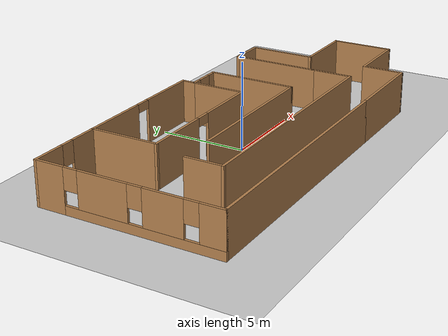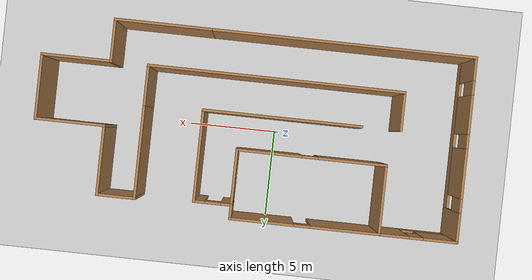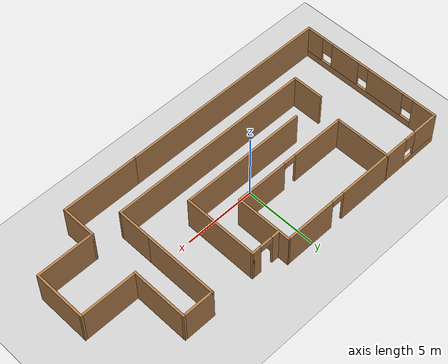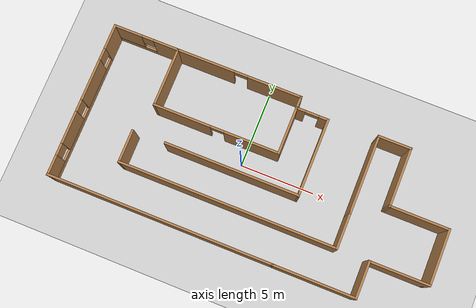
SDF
<sdf version="1.6">
 <world name="default">
  <model name="ground_plane">
   <static>1</static>
   <link name="link">
    <collision name="collision">
     <geometry><plane><normal>0 0 1</normal><size>100 100</size></plane></geometry>
     <surface><friction><ode><mu>100</mu><mu2>50</mu2></ode></friction></surface>
    </collision>
    <visual name="visual">
     <cast_shadows>0</cast_shadows>
     <geometry><plane><normal>0 0 1</normal><size>100 100</size></plane></geometry>
     <material>
      <script><uri>file://media/materials/scripts/gazebo.material</uri><name>Gazebo/Grey</name></script>
     </material>
    </visual>
   </link>
  </model>
  <model name="building">
   <pose>1.35791 -0.125302 0 0 -0 0</pose>
   <link name="Wall_0">
    <collision name="Wall_0_Collision">
     <geometry><box><size>9 0.15 2.5</size></box></geometry>
     <pose>0 0 1.25 0 -0 0</pose>
    </collision>
    <visual name="Wall_0_Visual">
     <pose>0 0 1.25 0 -0 0</pose>
     <geometry><box><size>9 0.15 2.5</size></box></geometry>
     <material>
      <script><uri>file://media/materials/scripts/gazebo.material</uri><name>Gazebo/Wood</name></script>
      <ambient>0.760784 0.662745 0.627451 1</ambient>
     </material>
     <meta><layer>0</layer></meta>
    </visual>
    <pose>-1.65 -0.675 0 0 -0 0</pose>
   </link>
   <link name="Wall_1">
    <collision name="Wall_1_Collision">
     <geometry><box><size>5.25 0.15 2.5</size></box></geometry>
     <pose>0 0 1.25 0 -0 0</pose>
    </collision>
    <visual name="Wall_1_Visual">
     <pose>0 0 1.25 0 -0 0</pose>
     <geometry><box><size>5.25 0.15 2.5</size></box></geometry>
     <material>
      <script><uri>file://media/materials/scripts/gazebo.material</uri><name>Gazebo/Wood</name></script>
      <ambient>0.760784 0.662745 0.627451 1</ambient>
     </material>
     <meta><layer>0</layer></meta>
    </visual>
    <pose>2.775 1.875 0 0 -0 1.5708</pose>
   </link>
   <link name="Wall_11">
    <pose>-3.5 5.175 0 0 -0 0</pose>
    <visual name="Wall_11_Visual_0">
     <pose>-2.28098 0 1.25 0 -0 0</pose>
     <geometry><box><size>3.93805 0.15 2.5</size></box></geometry>
     <material>
      <script><uri>file://media/materials/scripts/gazebo.material</uri><name>Gazebo/Wood</name></script>
      <ambient>1 1 1 1</ambient>
     </material>
     <meta><layer>0</layer></meta>
    </visual>
    <collision name="Wall_11_Collision_0">
     <geometry><box><size>3.93805 0.15 2.5</size></box></geometry>
     <pose>-2.28098 0 1.25 0 -0 0</pose>
    </collision>
    <visual name="Wall_11_Visual_1">
     <pose>2.41902 0 1.25 0 -0 0</pose>
     <geometry><box><size>3.66195 0.15 2.5</size></box></geometry>
     <material>
      <script><uri>file://media/materials/scripts/gazebo.material</uri><name>Gazebo/Wood</name></script>
      <ambient>1 1 1 1</ambient>
     </material>
     <meta><layer>0</layer></meta>
    </visual>
    <collision name="Wall_11_Collision_1">
     <geometry><box><size>3.66195 0.15 2.5</size></box></geometry>
     <pose>2.41902 0 1.25 0 -0 0</pose>
    </collision>
    <visual name="Wall_11_Visual_2">
     <pose>0.138047 0 2.25 0 -0 0</pose>
     <geometry><box><size>0.9 0.15 0.5</size></box></geometry>
     <material>
      <script><uri>file://media/materials/scripts/gazebo.material</uri><name>Gazebo/Wood</name></script>
      <ambient>1 1 1 1</ambient>
     </material>
     <meta><layer>0</layer></meta>
    </visual>
    <collision name="Wall_11_Collision_2">
     <geometry><box><size>0.9 0.15 0.5</size></box></geometry>
     <pose>0.138047 0 2.25 0 -0 0</pose>
    </collision>
   </link>
   <link name="Wall_12">
    <collision name="Wall_12_Collision">
     <geometry><box><size>0.9 0.15 2.5</size></box></geometry>
     <pose>0 0 1.25 0 -0 0</pose>
    </collision>
    <visual name="Wall_12_Visual">
     <pose>0 0 1.25 0 -0 0</pose>
     <geometry><box><size>0.9 0.15 2.5</size></box></geometry>
     <material>
      <script><uri>file://media/materials/scripts/gazebo.material</uri><name>Gazebo/Wood</name></script>
      <ambient>1 1 1 1</ambient>
     </material>
     <meta><layer>0</layer></meta>
    </visual>
    <pose>0.675001 4.8 0 0 0 -1.5708</pose>
   </link>
   <link name="Wall_14">
    <collision name="Wall_14_Collision">
     <geometry><box><size>5.5 0.15 2.5</size></box></geometry>
     <pose>0 0 1.25 0 -0 0</pose>
    </collision>
    <visual name="Wall_14_Visual">
     <pose>0 0 1.25 0 -0 0</pose>
     <geometry><box><size>5.5 0.15 2.5</size></box></geometry>
     <material>
      <script><uri>file://media/materials/scripts/gazebo.material</uri><name>Gazebo/Wood</name></script>
      <ambient>1 1 1 1</ambient>
     </material>
     <meta><layer>0</layer></meta>
    </visual>
    <pose>5.5 -5.175 0 0 -0 0</pose>
   </link>
   <link name="Wall_15">
    <collision name="Wall_15_Collision">
     <geometry><box><size>2.5 0.15 2.5</size></box></geometry>
     <pose>0 0 1.25 0 -0 0</pose>
    </collision>
    <visual name="Wall_15_Visual">
     <pose>0 0 1.25 0 -0 0</pose>
     <geometry><box><size>2.5 0.15 2.5</size></box></geometry>
     <material>
      <script><uri>file://media/materials/scripts/gazebo.material</uri><name>Gazebo/Wood</name></script>
      <ambient>1 1 1 1</ambient>
     </material>
     <meta><layer>0</layer></meta>
    </visual>
    <pose>8.175 -4 0 0 -0 1.5708</pose>
   </link>
   <link name="Wall_16">
    <collision name="Wall_16_Collision">
     <geometry><box><size>4 0.15 2.5</size></box></geometry>
     <pose>0 0 1.25 0 -0 0</pose>
    </collision>
    <visual name="Wall_16_Visual">
     <pose>0 0 1.25 0 -0 0</pose>
     <geometry><box><size>4 0.15 2.5</size></box></geometry>
     <material>
      <script><uri>file://media/materials/scripts/gazebo.material</uri><name>Gazebo/Wood</name></script>
      <ambient>1 1 1 1</ambient>
     </material>
     <meta><layer>0</layer></meta>
    </visual>
    <pose>10.1 -2.825 0 0 -0 0</pose>
   </link>
   <link name="Wall_17">
    <collision name="Wall_17_Collision">
     <geometry><box><size>3.75 0.15 2.5</size></box></geometry>
     <pose>0 0 1.25 0 -0 0</pose>
    </collision>
    <visual name="Wall_17_Visual">
     <pose>0 0 1.25 0 -0 0</pose>
     <geometry><box><size>3.75 0.15 2.5</size></box></geometry>
     <material>
      <script><uri>file://media/materials/scripts/gazebo.material</uri><name>Gazebo/Wood</name></script>
      <ambient>1 1 1 1</ambient>
     </material>
     <meta><layer>0</layer></meta>
    </visual>
    <pose>12.025 -1.025 0 0 -0 1.5708</pose>
   </link>
   <link name="Wall_18">
    <collision name="Wall_18_Collision">
     <geometry><box><size>4 0.15 2.5</size></box></geometry>
     <pose>0 0 1.25 0 -0 0</pose>
    </collision>
    <visual name="Wall_18_Visual">
     <pose>0 0 1.25 0 -0 0</pose>
     <geometry><box><size>4 0.15 2.5</size></box></geometry>
     <material>
      <script><uri>file://media/materials/scripts/gazebo.material</uri><name>Gazebo/Wood</name></script>
      <ambient>1 1 1 1</ambient>
     </material>
     <meta><layer>0</layer></meta>
    </visual>
    <pose>10.1 0.775 0 0 -0 3.14159</pose>
   </link>
   <link name="Wall_19">
    <collision name="Wall_19_Collision">
     <geometry><box><size>4 0.15 2.5</size></box></geometry>
     <pose>0 0 1.25 0 -0 0</pose>
    </collision>
    <visual name="Wall_19_Visual">
     <pose>0 0 1.25 0 -0 0</pose>
     <geometry><box><size>4 0.15 2.5</size></box></geometry>
     <material>
      <script><uri>file://media/materials/scripts/gazebo.material</uri><name>Gazebo/Wood</name></script>
      <ambient>1 1 1 1</ambient>
     </material>
     <meta><layer>0</layer></meta>
    </visual>
    <pose>8.175 2.7 0 0 -0 1.5708</pose>
   </link>
   <link name="Wall_2">
    <pose>1.725 4.425 0 0 -0 3.14159</pose>
    <visual name="Wall_2_Visual_0">
     <pose>-0.783012 0 1.25 0 -0 0</pose>
     <geometry><box><size>0.683975 0.15 2.5</size></box></geometry>
     <material>
      <script><uri>file://media/materials/scripts/gazebo.material</uri><name>Gazebo/Wood</name></script>
      <ambient>1 1 1 1</ambient>
     </material>
     <meta><layer>0</layer></meta>
    </visual>
    <collision name="Wall_2_Collision_0">
     <geometry><box><size>0.683975 0.15 2.5</size></box></geometry>
     <pose>-0.783012 0 1.25 0 -0 0</pose>
    </collision>
    <visual name="Wall_2_Visual_1">
     <pose>0.791988 0 1.25 0 -0 0</pose>
     <geometry><box><size>0.666025 0.15 2.5</size></box></geometry>
     <material>
      <script><uri>file://media/materials/scripts/gazebo.material</uri><name>Gazebo/Wood</name></script>
      <ambient>1 1 1 1</ambient>
     </material>
     <meta><layer>0</layer></meta>
    </visual>
    <collision name="Wall_2_Collision_1">
     <geometry><box><size>0.666025 0.15 2.5</size></box></geometry>
     <pose>0.791988 0 1.25 0 -0 0</pose>
    </collision>
    <visual name="Wall_2_Visual_2">
     <pose>0.008975 0 2.25 0 -0 0</pose>
     <geometry><box><size>0.9 0.15 0.5</size></box></geometry>
     <material>
      <script><uri>file://media/materials/scripts/gazebo.material</uri><name>Gazebo/Wood</name></script>
      <ambient>1 1 1 1</ambient>
     </material>
     <meta><layer>0</layer></meta>
    </visual>
    <collision name="Wall_2_Collision_2">
     <geometry><box><size>0.9 0.15 0.5</size></box></geometry>
     <pose>0.008975 0 2.25 0 -0 0</pose>
    </collision>
   </link>
   <link name="Wall_20">
    <collision name="Wall_20_Collision">
     <geometry><box><size>2.25 0.15 2.5</size></box></geometry>
     <pose>0 0 1.25 0 -0 0</pose>
    </collision>
    <visual name="Wall_20_Visual">
     <pose>0 0 1.25 0 -0 0</pose>
     <geometry><box><size>2.25 0.15 2.5</size></box></geometry>
     <material>
      <script><uri>file://media/materials/scripts/gazebo.material</uri><name>Gazebo/Wood</name></script>
      <ambient>1 1 1 1</ambient>
     </material>
     <meta><layer>0</layer></meta>
    </visual>
    <pose>7.125 4.625 0 0 -0 3.14159</pose>
   </link>
   <link name="Wall_21">
    <collision name="Wall_21_Collision">
     <geometry><box><size>5.25 0.15 2.5</size></box></geometry>
     <pose>0 0 1.25 0 -0 0</pose>
    </collision>
    <visual name="Wall_21_Visual">
     <pose>0 0 1.25 0 -0 0</pose>
     <geometry><box><size>5.25 0.15 2.5</size></box></geometry>
     <material>
      <script><uri>file://media/materials/scripts/gazebo.material</uri><name>Gazebo/Wood</name></script>
      <ambient>1 1 1 1</ambient>
     </material>
     <meta><layer>0</layer></meta>
    </visual>
    <pose>6.075 2.075 0 0 0 -1.5708</pose>
   </link>
   <link name="Wall_22">
    <collision name="Wall_22_Collision">
     <geometry><box><size>2.5 0.15 2.5</size></box></geometry>
     <pose>0 0 1.25 0 -0 0</pose>
    </collision>
    <visual name="Wall_22_Visual">
     <pose>0 0 1.25 0 -0 0</pose>
     <geometry><box><size>2.5 0.15 2.5</size></box></geometry>
     <material>
      <script><uri>file://media/materials/scripts/gazebo.material</uri><name>Gazebo/Wood</name></script>
      <ambient>1 1 1 1</ambient>
     </material>
     <meta><layer>0</layer></meta>
    </visual>
    <pose>6.075 -1.65 0 0 0 -1.5708</pose>
   </link>
   <link name="Wall_23">
    <collision name="Wall_23_Collision">
     <geometry><box><size>14.5 0.15 2.5</size></box></geometry>
     <pose>0 0 1.25 0 -0 0</pose>
    </collision>
    <visual name="Wall_23_Visual">
     <pose>0 0 1.25 0 -0 0</pose>
     <geometry><box><size>14.5 0.15 2.5</size></box></geometry>
     <material>
      <script><uri>file://media/materials/scripts/gazebo.material</uri><name>Gazebo/Wood</name></script>
      <ambient>1 1 1 1</ambient>
     </material>
     <meta><layer>0</layer></meta>
    </visual>
    <pose>-1.1 -2.825 0 0 -0 3.14159</pose>
   </link>
   <link name="Wall_24">
    <collision name="Wall_24_Collision">
     <geometry><box><size>2.25 0.15 2.5</size></box></geometry>
     <pose>0 0 1.25 0 -0 0</pose>
    </collision>
    <visual name="Wall_24_Visual">
     <pose>0 0 1.25 0 -0 0</pose>
     <geometry><box><size>2.25 0.15 2.5</size></box></geometry>
     <material>
      <script><uri>file://media/materials/scripts/gazebo.material</uri><name>Gazebo/Wood</name></script>
      <ambient>1 1 1 1</ambient>
     </material>
     <meta><layer>0</layer></meta>
    </visual>
    <pose>-8.275 -1.775 0 0 -0 1.5708</pose>
   </link>
   <link name="Wall_3">
    <collision name="Wall_3_Collision">
     <geometry><box><size>3.25 0.15 2.5</size></box></geometry>
     <pose>0 0 1.25 0 -0 0</pose>
    </collision>
    <visual name="Wall_3_Visual">
     <pose>0 0 1.25 0 -0 0</pose>
     <geometry><box><size>3.25 0.15 2.5</size></box></geometry>
     <material>
      <script><uri>file://media/materials/scripts/gazebo.material</uri><name>Gazebo/Wood</name></script>
      <ambient>1 1 1 1</ambient>
     </material>
     <meta><layer>0</layer></meta>
    </visual>
    <pose>0.675001 2.875 0 0 0 -1.5708</pose>
   </link>
   <link name="Wall_4">
    <pose>-3.5 1.325 0 0 -0 3.14159</pose>
    <visual name="Wall_4_Visual_0">
     <pose>-2.38843 0 1.25 0 -0 0</pose>
     <geometry><box><size>3.72313 0.15 2.5</size></box></geometry>
     <material>
      <script><uri>file://media/materials/scripts/gazebo.material</uri><name>Gazebo/Wood</name></script>
      <ambient>0.760784 0.662745 0.627451 1</ambient>
     </material>
     <meta><layer>0</layer></meta>
    </visual>
    <collision name="Wall_4_Collision_0">
     <geometry><box><size>3.72313 0.15 2.5</size></box></geometry>
     <pose>-2.38843 0 1.25 0 -0 0</pose>
    </collision>
    <visual name="Wall_4_Visual_1">
     <pose>2.31157 0 1.25 0 -0 0</pose>
     <geometry><box><size>3.87687 0.15 2.5</size></box></geometry>
     <material>
      <script><uri>file://media/materials/scripts/gazebo.material</uri><name>Gazebo/Wood</name></script>
      <ambient>0.760784 0.662745 0.627451 1</ambient>
     </material>
     <meta><layer>0</layer></meta>
    </visual>
    <collision name="Wall_4_Collision_1">
     <geometry><box><size>3.87687 0.15 2.5</size></box></geometry>
     <pose>2.31157 0 1.25 0 -0 0</pose>
    </collision>
    <visual name="Wall_4_Visual_2">
     <pose>-0.076867 0 2.25 0 -0 0</pose>
     <geometry><box><size>0.9 0.15 0.5</size></box></geometry>
     <material>
      <script><uri>file://media/materials/scripts/gazebo.material</uri><name>Gazebo/Wood</name></script>
      <ambient>0.760784 0.662745 0.627451 1</ambient>
     </material>
     <meta><layer>0</layer></meta>
    </visual>
    <collision name="Wall_4_Collision_2">
     <geometry><box><size>0.9 0.15 0.5</size></box></geometry>
     <pose>-0.076867 0 2.25 0 -0 0</pose>
    </collision>
   </link>
   <link name="Wall_5">
    <collision name="Wall_5_Collision">
     <geometry><box><size>4 0.15 2.5</size></box></geometry>
     <pose>0 0 1.25 0 -0 0</pose>
    </collision>
    <visual name="Wall_5_Visual">
     <pose>0 0 1.25 0 -0 0</pose>
     <geometry><box><size>4 0.15 2.5</size></box></geometry>
     <material>
      <script><uri>file://media/materials/scripts/gazebo.material</uri><name>Gazebo/Wood</name></script>
      <ambient>1 1 1 1</ambient>
     </material>
     <meta><layer>0</layer></meta>
    </visual>
    <pose>-7.675 3.25 0 0 -0 1.5708</pose>
   </link>
   <link name="Wall_6">
    <pose>-9.85 5.175 0 0 -0 3.14159</pose>
    <visual name="Wall_6_Visual_0">
     <pose>-1.37234 0 1.25 0 -0 0</pose>
     <geometry><box><size>1.75531 0.15 2.5</size></box></geometry>
     <material>
      <script><uri>file://media/materials/scripts/gazebo.material</uri><name>Gazebo/Wood</name></script>
      <ambient>1 1 1 1</ambient>
     </material>
     <meta><layer>0</layer></meta>
    </visual>
    <collision name="Wall_6_Collision_0">
     <geometry><box><size>1.75531 0.15 2.5</size></box></geometry>
     <pose>-1.37234 0 1.25 0 -0 0</pose>
    </collision>
    <visual name="Wall_6_Visual_1">
     <pose>0.877655 0 0.25 0 -0 0</pose>
     <geometry><box><size>2.74469 0.15 0.5</size></box></geometry>
     <material>
      <script><uri>file://media/materials/scripts/gazebo.material</uri><name>Gazebo/Wood</name></script>
      <ambient>1 1 1 1</ambient>
     </material>
     <meta><layer>0</layer></meta>
    </visual>
    <collision name="Wall_6_Collision_1">
     <geometry><box><size>2.74469 0.15 0.5</size></box></geometry>
     <pose>0.877655 0 0.25 0 -0 0</pose>
    </collision>
    <visual name="Wall_6_Visual_2">
     <pose>1.27765 0 1.5 0 -0 0</pose>
     <geometry><box><size>1.94469 0.15 2</size></box></geometry>
     <material>
      <script><uri>file://media/materials/scripts/gazebo.material</uri><name>Gazebo/Wood</name></script>
      <ambient>1 1 1 1</ambient>
     </material>
     <meta><layer>0</layer></meta>
    </visual>
    <collision name="Wall_6_Collision_2">
     <geometry><box><size>1.94469 0.15 2</size></box></geometry>
     <pose>1.27765 0 1.5 0 -0 0</pose>
    </collision>
    <visual name="Wall_6_Visual_3">
     <pose>-0.09469 0 1.9 0 -0 0</pose>
     <geometry><box><size>0.8 0.15 1.2</size></box></geometry>
     <material>
      <script><uri>file://media/materials/scripts/gazebo.material</uri><name>Gazebo/Wood</name></script>
      <ambient>1 1 1 1</ambient>
     </material>
     <meta><layer>0</layer></meta>
    </visual>
    <collision name="Wall_6_Collision_3">
     <geometry><box><size>0.8 0.15 1.2</size></box></geometry>
     <pose>-0.09469 0 1.9 0 -0 0</pose>
    </collision>
   </link>
   <link name="Wall_7">
    <pose>-12.025 0 0 0 0 -1.5708</pose>
    <visual name="Wall_7_Visual_0">
     <pose>-4.38665 0 1.25 0 -0 0</pose>
     <geometry><box><size>1.7267 0.15 2.5</size></box></geometry>
     <material>
      <script><uri>file://media/materials/scripts/gazebo.material</uri><name>Gazebo/Wood</name></script>
      <ambient>1 1 1 1</ambient>
     </material>
     <meta><layer>0</layer></meta>
    </visual>
    <collision name="Wall_7_Collision_0">
     <geometry><box><size>1.7267 0.15 2.5</size></box></geometry>
     <pose>-4.38665 0 1.25 0 -0 0</pose>
    </collision>
    <visual name="Wall_7_Visual_1">
     <pose>0.863348 0 0.25 0 -0 0</pose>
     <geometry><box><size>8.77331 0.15 0.5</size></box></geometry>
     <material>
      <script><uri>file://media/materials/scripts/gazebo.material</uri><name>Gazebo/Wood</name></script>
      <ambient>1 1 1 1</ambient>
     </material>
     <meta><layer>0</layer></meta>
    </visual>
    <collision name="Wall_7_Collision_1">
     <geometry><box><size>8.77331 0.15 0.5</size></box></geometry>
     <pose>0.863348 0 0.25 0 -0 0</pose>
    </collision>
    <visual name="Wall_7_Visual_2">
     <pose>-1.31848 0 1.5 0 -0 0</pose>
     <geometry><box><size>2.80965 0.15 2</size></box></geometry>
     <material>
      <script><uri>file://media/materials/scripts/gazebo.material</uri><name>Gazebo/Wood</name></script>
      <ambient>1 1 1 1</ambient>
     </material>
     <meta><layer>0</layer></meta>
    </visual>
    <collision name="Wall_7_Collision_2">
     <geometry><box><size>2.80965 0.15 2</size></box></geometry>
     <pose>-1.31848 0 1.5 0 -0 0</pose>
    </collision>
    <visual name="Wall_7_Visual_3">
     <pose>1.98526 0 1.5 0 -0 0</pose>
     <geometry><box><size>2.19784 0.15 2</size></box></geometry>
     <material>
      <script><uri>file://media/materials/scripts/gazebo.material</uri><name>Gazebo/Wood</name></script>
      <ambient>1 1 1 1</ambient>
     </material>
     <meta><layer>0</layer></meta>
    </visual>
    <collision name="Wall_7_Collision_3">
     <geometry><box><size>2.19784 0.15 2</size></box></geometry>
     <pose>1.98526 0 1.5 0 -0 0</pose>
    </collision>
    <visual name="Wall_7_Visual_4">
     <pose>4.56709 0 1.5 0 -0 0</pose>
     <geometry><box><size>1.36582 0.15 2</size></box></geometry>
     <material>
      <script><uri>file://media/materials/scripts/gazebo.material</uri><name>Gazebo/Wood</name></script>
      <ambient>1 1 1 1</ambient>
     </material>
     <meta><layer>0</layer></meta>
    </visual>
    <collision name="Wall_7_Collision_4">
     <geometry><box><size>1.36582 0.15 2</size></box></geometry>
     <pose>4.56709 0 1.5 0 -0 0</pose>
    </collision>
    <visual name="Wall_7_Visual_5">
     <pose>-3.12331 0 1.9 0 -0 0</pose>
     <geometry><box><size>0.8 0.15 1.2</size></box></geometry>
     <material>
      <script><uri>file://media/materials/scripts/gazebo.material</uri><name>Gazebo/Wood</name></script>
      <ambient>1 1 1 1</ambient>
     </material>
     <meta><layer>0</layer></meta>
    </visual>
    <collision name="Wall_7_Collision_5">
     <geometry><box><size>0.8 0.15 1.2</size></box></geometry>
     <pose>-3.12331 0 1.9 0 -0 0</pose>
    </collision>
    <visual name="Wall_7_Visual_6">
     <pose>0.486342 0 1.9 0 -0 0</pose>
     <geometry><box><size>0.8 0.15 1.2</size></box></geometry>
     <material>
      <script><uri>file://media/materials/scripts/gazebo.material</uri><name>Gazebo/Wood</name></script>
      <ambient>1 1 1 1</ambient>
     </material>
     <meta><layer>0</layer></meta>
    </visual>
    <collision name="Wall_7_Collision_6">
     <geometry><box><size>0.8 0.15 1.2</size></box></geometry>
     <pose>0.486342 0 1.9 0 -0 0</pose>
    </collision>
    <visual name="Wall_7_Visual_7">
     <pose>3.48419 0 1.9 0 -0 0</pose>
     <geometry><box><size>0.8 0.15 1.2</size></box></geometry>
     <material>
      <script><uri>file://media/materials/scripts/gazebo.material</uri><name>Gazebo/Wood</name></script>
      <ambient>1 1 1 1</ambient>
     </material>
     <meta><layer>0</layer></meta>
    </visual>
    <collision name="Wall_7_Collision_7">
     <geometry><box><size>0.8 0.15 1.2</size></box></geometry>
     <pose>3.48419 0 1.9 0 -0 0</pose>
    </collision>
   </link>
   <link name="Wall_8">
    <collision name="Wall_8_Collision">
     <geometry><box><size>15 0.15 2.5</size></box></geometry>
     <pose>0 0 1.25 0 -0 0</pose>
    </collision>
    <visual name="Wall_8_Visual">
     <pose>0 0 1.25 0 -0 0</pose>
     <geometry><box><size>15 0.15 2.5</size></box></geometry>
     <material>
      <script><uri>file://media/materials/scripts/gazebo.material</uri><name>Gazebo/Wood</name></script>
      <ambient>1 1 1 1</ambient>
     </material>
     <meta><layer>0</layer></meta>
    </visual>
    <pose>-4.6 -5.175 0 0 -0 0</pose>
   </link>
   <static>1</static>
  </model>
 </world>
</sdf>
